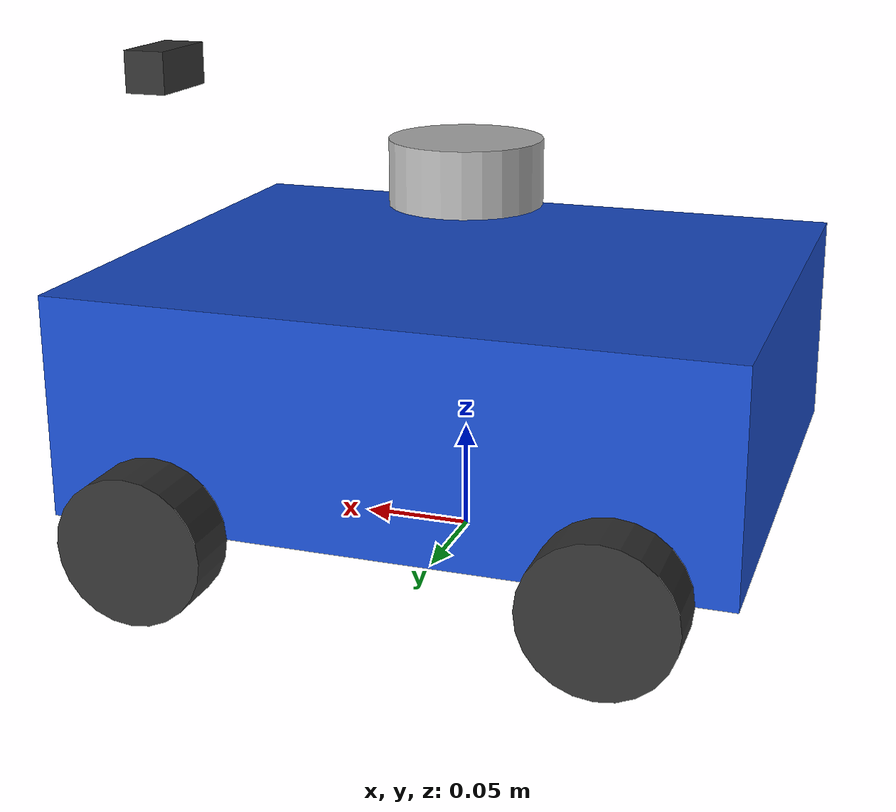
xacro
<?xml version="1.0"?>
<robot xmlns:xacro="http://www.ros.org/wiki/xacro" name="home_scout">

  <!-- Properties                                    -->
  <xacro:property name="base_width" value="0.24"/>
  <xacro:property name="base_length" value="0.30"/>
  <xacro:property name="base_height" value="0.10"/>
  <xacro:property name="wheel_radius" value="0.033"/>
  <xacro:property name="wheel_width" value="0.026"/>
  <xacro:property name="wheel_offset_x" value="0.10"/>
  <xacro:property name="wheel_offset_y" value="${base_width / 2 + wheel_width / 2}"/>
  <xacro:property name="caster_radius" value="0.015"/>
  <xacro:property name="camera_height" value="0.18"/>
  <xacro:property name="lidar_height" value="0.14"/>

  <!-- Materials                                     -->
  <material name="dark_grey">
    <color rgba="0.2 0.2 0.2 1.0"/>
  </material>
  <material name="light_grey">
    <color rgba="0.7 0.7 0.7 1.0"/>
  </material>
  <material name="blue">
    <color rgba="0.1 0.3 0.8 1.0"/>
  </material>

  <!-- Wheel macro                                   -->
  <xacro:macro name="wheel" params="prefix x_offset y_offset">
    <link name="${prefix}_wheel_link">
      <visual>
        <geometry>
          <cylinder radius="${wheel_radius}" length="${wheel_width}"/>
        </geometry>
        <material name="dark_grey"/>
      </visual>
      <collision>
        <geometry>
          <cylinder radius="${wheel_radius}" length="${wheel_width}"/>
        </geometry>
      </collision>
      <inertial>
        <mass value="0.1"/>
        <inertia ixx="0.00003" ixy="0" ixz="0" iyy="0.00003" iyz="0" izz="0.00005"/>
      </inertial>
    </link>
    <joint name="${prefix}_wheel_joint" type="continuous">
      <parent link="base_link"/>
      <child link="${prefix}_wheel_link"/>
      <origin xyz="${x_offset} ${y_offset} 0" rpy="${-pi/2} 0 0"/>
      <axis xyz="0 0 1"/>
    </joint>
  </xacro:macro>

  <!-- Base link                                     -->
  <link name="base_footprint"/>

  <link name="base_link">
    <visual>
      <geometry>
        <box size="${base_length} ${base_width} ${base_height}"/>
      </geometry>
      <origin xyz="0 0 ${base_height / 2}" rpy="0 0 0"/>
      <material name="blue"/>
    </visual>
    <collision>
      <geometry>
        <box size="${base_length} ${base_width} ${base_height}"/>
      </geometry>
      <origin xyz="0 0 ${base_height / 2}" rpy="0 0 0"/>
    </collision>
    <inertial>
      <mass value="2.5"/>
      <origin xyz="0 0 ${base_height / 2}"/>
      <inertia ixx="0.01" ixy="0" ixz="0" iyy="0.02" iyz="0" izz="0.02"/>
    </inertial>
  </link>

  <joint name="base_footprint_joint" type="fixed">
    <parent link="base_footprint"/>
    <child link="base_link"/>
    <origin xyz="0 0 ${wheel_radius}" rpy="0 0 0"/>
  </joint>

  <!-- Drive wheels (4WD differential)               -->
  <xacro:wheel prefix="front_left"  x_offset="${wheel_offset_x}"  y_offset="${wheel_offset_y}"/>
  <xacro:wheel prefix="front_right" x_offset="${wheel_offset_x}"  y_offset="${-wheel_offset_y}"/>
  <xacro:wheel prefix="rear_left"   x_offset="${-wheel_offset_x}" y_offset="${wheel_offset_y}"/>
  <xacro:wheel prefix="rear_right"  x_offset="${-wheel_offset_x}" y_offset="${-wheel_offset_y}"/>

  <!-- Camera link (front-facing MIPI-CSI)           -->
  <link name="camera_link">
    <visual>
      <geometry>
        <box size="0.02 0.04 0.02"/>
      </geometry>
      <material name="dark_grey"/>
    </visual>
    <collision>
      <geometry>
        <box size="0.02 0.04 0.02"/>
      </geometry>
    </collision>
    <inertial>
      <mass value="0.01"/>
      <inertia ixx="0.000001" ixy="0" ixz="0" iyy="0.000001" iyz="0" izz="0.000001"/>
    </inertial>
  </link>

  <joint name="camera_joint" type="fixed">
    <parent link="base_link"/>
    <child link="camera_link"/>
    <origin xyz="${base_length / 2} 0 ${camera_height}" rpy="0 0 0"/>
  </joint>

  <link name="camera_optical_frame"/>
  <joint name="camera_optical_joint" type="fixed">
    <parent link="camera_link"/>
    <child link="camera_optical_frame"/>
    <!-- Rotate from ROS convention (x-forward) to optical convention (z-forward) -->
    <origin xyz="0 0 0" rpy="${-pi/2} 0 ${-pi/2}"/>
  </joint>

  <!-- LiDAR link (LD19 on top of chassis)           -->
  <link name="lidar_link">
    <visual>
      <geometry>
        <cylinder radius="0.035" length="0.03"/>
      </geometry>
      <material name="light_grey"/>
    </visual>
    <collision>
      <geometry>
        <cylinder radius="0.035" length="0.03"/>
      </geometry>
    </collision>
    <inertial>
      <mass value="0.05"/>
      <inertia ixx="0.00001" ixy="0" ixz="0" iyy="0.00001" iyz="0" izz="0.00001"/>
    </inertial>
  </link>

  <joint name="lidar_joint" type="fixed">
    <parent link="base_link"/>
    <child link="lidar_link"/>
    <origin xyz="0 0 ${lidar_height}" rpy="0 0 0"/>
  </joint>

  <!-- IMU link (BMI270 on main board)               -->
  <link name="imu_link"/>
  <joint name="imu_joint" type="fixed">
    <parent link="base_link"/>
    <child link="imu_link"/>
    <origin xyz="0 0 ${base_height / 2}" rpy="0 0 0"/>
  </joint>

</robot>
